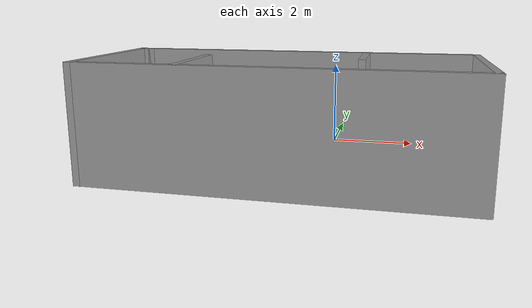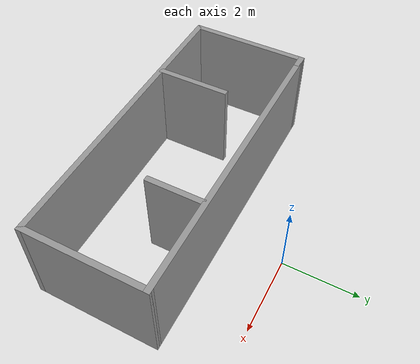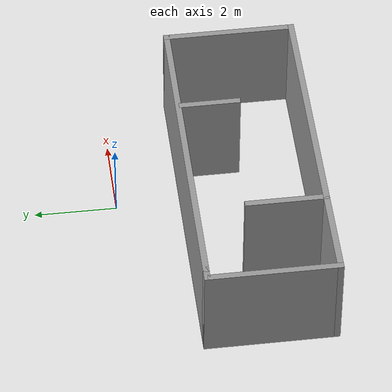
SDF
<?xml version='1.0'?>
<sdf version='1.7'>
  <model name='Kart'>
    <pose>-0.675 -2.4075 0 0 -0 0</pose>
    <link name='Wall_0'>
      <collision name='Wall_0_Collision'>
        <geometry>
          <box>
            <size>7.75 0.15 2.5</size>
          </box>
        </geometry>
        <pose>0 0 1.25 0 -0 0</pose>
      </collision>
      <visual name='Wall_0_Visual'>
        <pose>0 0 1.25 0 -0 0</pose>
        <geometry>
          <box>
            <size>7.75 0.15 2.5</size>
          </box>
        </geometry>
        <material>
          <script>
            <uri>file://media/materials/scripts/gazebo.material</uri>
            <name>Gazebo/Grey</name>
          </script>
          <ambient>1 1 1 1</ambient>
        </material>
        <meta>
          <layer>0</layer>
        </meta>
      </visual>
      <pose>0.125 0.7675 0 0 -0 0</pose>
    </link>
    <link name='Wall_1'>
      <collision name='Wall_1_Collision'>
        <geometry>
          <box>
            <size>3.25 0.15 2.5</size>
          </box>
        </geometry>
        <pose>0 0 1.25 0 -0 0</pose>
      </collision>
      <visual name='Wall_1_Visual'>
        <pose>0 0 1.25 0 -0 0</pose>
        <geometry>
          <box>
            <size>3.25 0.15 2.5</size>
          </box>
        </geometry>
        <material>
          <script>
            <uri>file://media/materials/scripts/gazebo.material</uri>
            <name>Gazebo/Grey</name>
          </script>
          <ambient>1 1 1 1</ambient>
        </material>
        <meta>
          <layer>0</layer>
        </meta>
      </visual>
      <pose>3.925 -0.7825 0 0 -0 -1.5708</pose>
    </link>
    <link name='Wall_2'>
      <collision name='Wall_2_Collision'>
        <geometry>
          <box>
            <size>8 0.15 2.5</size>
          </box>
        </geometry>
        <pose>0 0 1.25 0 -0 0</pose>
      </collision>
      <visual name='Wall_2_Visual'>
        <pose>0 0 1.25 0 -0 0</pose>
        <geometry>
          <box>
            <size>8 0.15 2.5</size>
          </box>
        </geometry>
        <material>
          <script>
            <uri>file://media/materials/scripts/gazebo.material</uri>
            <name>Gazebo/Grey</name>
          </script>
          <ambient>1 1 1 1</ambient>
        </material>
        <meta>
          <layer>0</layer>
        </meta>
      </visual>
      <pose>-0 -2.3325 0 0 -0 3.14159</pose>
    </link>
    <link name='Wall_3'>
      <collision name='Wall_3_Collision'>
        <geometry>
          <box>
            <size>3.25 0.15 2.5</size>
          </box>
        </geometry>
        <pose>0 0 1.25 0 -0 0</pose>
      </collision>
      <visual name='Wall_3_Visual'>
        <pose>0 0 1.25 0 -0 0</pose>
        <geometry>
          <box>
            <size>3.25 0.15 2.5</size>
          </box>
        </geometry>
        <material>
          <script>
            <uri>file://media/materials/scripts/gazebo.material</uri>
            <name>Gazebo/Grey</name>
          </script>
          <ambient>1 1 1 1</ambient>
        </material>
        <meta>
          <layer>0</layer>
        </meta>
      </visual>
      <pose>-3.925 -0.7825 0 0 -0 1.5708</pose>
    </link>
    <link name='Wall_4'>
      <collision name='Wall_4_Collision'>
        <geometry>
          <box>
            <size>0.4 0.15 2.5</size>
          </box>
        </geometry>
        <pose>0 0 1.25 0 -0 0</pose>
      </collision>
      <visual name='Wall_4_Visual'>
        <pose>0 0 1.25 0 -0 0</pose>
        <geometry>
          <box>
            <size>0.4 0.15 2.5</size>
          </box>
        </geometry>
        <material>
          <script>
            <uri>file://media/materials/scripts/gazebo.material</uri>
            <name>Gazebo/Grey</name>
          </script>
          <ambient>1 1 1 1</ambient>
        </material>
        <meta>
          <layer>0</layer>
        </meta>
      </visual>
      <pose>-3.8 0.7675 0 0 -0 0</pose>
    </link>
    <link name='Wall_6'>
      <collision name='Wall_6_Collision'>
        <geometry>
          <box>
            <size>2 0.15 2.5</size>
          </box>
        </geometry>
        <pose>0 0 1.25 0 -0 0</pose>
      </collision>
      <visual name='Wall_6_Visual'>
        <pose>0 0 1.25 0 -0 0</pose>
        <geometry>
          <box>
            <size>2 0.15 2.5</size>
          </box>
        </geometry>
        <material>
          <script>
            <uri>file://media/materials/scripts/gazebo.material</uri>
            <name>Gazebo/Grey</name>
          </script>
          <ambient>1 1 1 1</ambient>
        </material>
        <meta>
          <layer>0</layer>
        </meta>
      </visual>
      <pose>-1.775 -1.3975 0 0 -0 -1.5708</pose>
    </link>
    <link name='Wall_8'>
      <collision name='Wall_8_Collision'>
        <geometry>
          <box>
            <size>1.5 0.15 2.5</size>
          </box>
        </geometry>
        <pose>0 0 1.25 0 -0 0</pose>
      </collision>
      <visual name='Wall_8_Visual'>
        <pose>0 0 1.25 0 -0 0</pose>
        <geometry>
          <box>
            <size>1.5 0.15 2.5</size>
          </box>
        </geometry>
        <material>
          <script>
            <uri>file://media/materials/scripts/gazebo.material</uri>
            <name>Gazebo/Grey</name>
          </script>
          <ambient>1 1 1 1</ambient>
        </material>
        <meta>
          <layer>0</layer>
        </meta>
      </visual>
      <pose>1.575 0.0025 0 0 -0 -1.5708</pose>
    </link>
    <static>1</static>
  </model>
</sdf>
